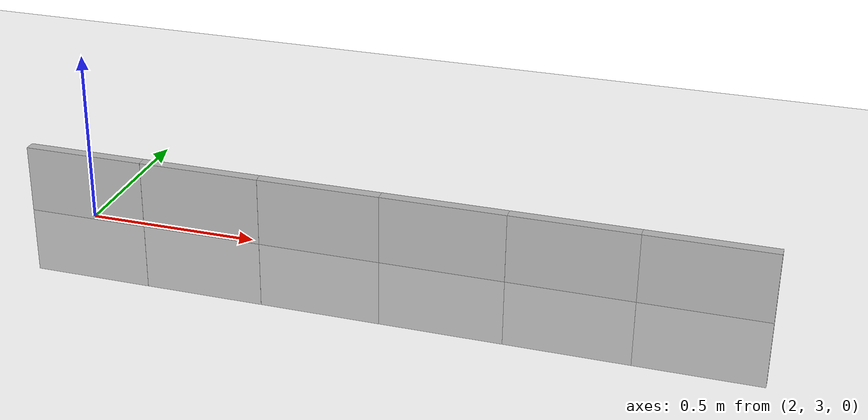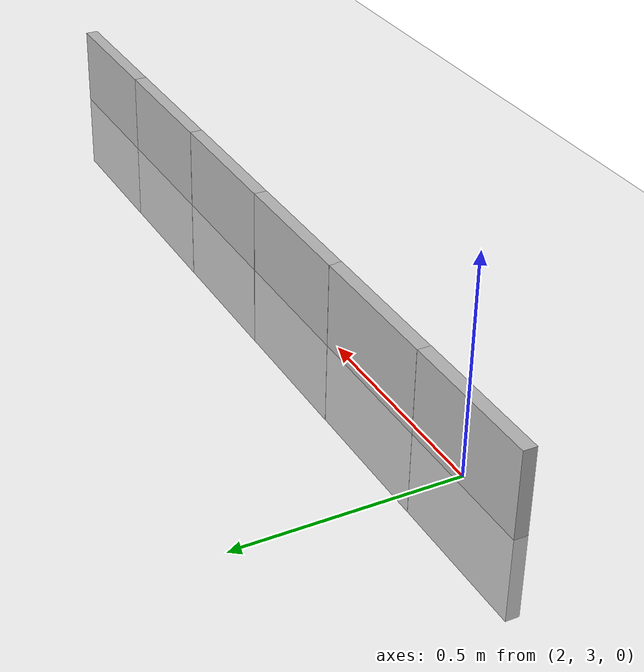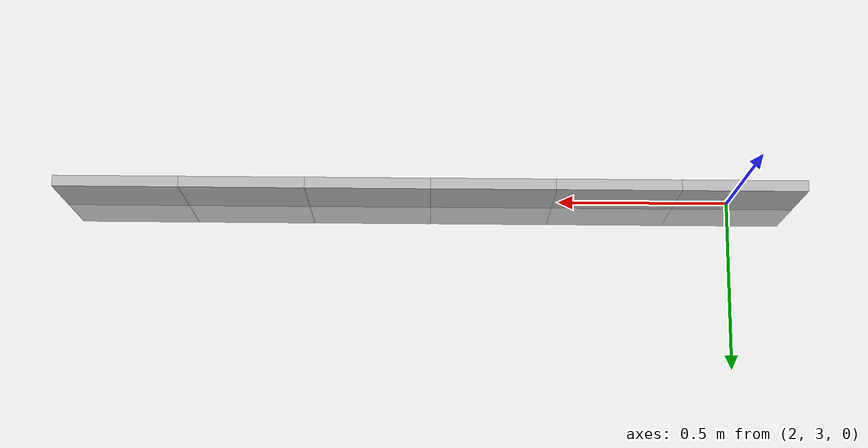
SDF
<sdf version="1.6">
 <world name="default">
  <model name="ground_plane">
   <static>1</static>
   <link name="link">
    <collision name="collision">
     <geometry><plane><normal>0 0 1</normal><size>100 100</size></plane></geometry>
     <surface>
      <contact><collide_bitmask>65535</collide_bitmask></contact>
      <friction><ode><mu>100</mu><mu2>50</mu2></ode></friction>
     </surface>
    </collision>
    <visual name="visual">
     <cast_shadows>0</cast_shadows>
     <geometry><plane><normal>0 0 1</normal><size>100 100</size></plane></geometry>
     <material>
      <script><uri>file://media/materials/scripts/gazebo.material</uri><name>Gazebo/Grey</name></script>
     </material>
    </visual>
   </link>
  </model>
  <model name="Placa03">
   <pose>3.78216 3.00001 0 0 -0 1.57</pose>
   <static>1</static>
   <link name="link">
    <collision name="collision"><geometry><box><size>0.031694 0.360886 0.40006</size></box></geometry></collision>
    <visual name="visual"><geometry><box><size>0.031694 0.360886 0.40006</size></box></geometry></visual>
   </link>
  </model>
  <model name="Placa04">
   <pose>3.42212 3.00025 0 0 -0 1.57</pose>
   <static>1</static>
   <link name="link">
    <collision name="collision"><geometry><box><size>0.031694 0.360886 0.40006</size></box></geometry></collision>
    <visual name="visual"><geometry><box><size>0.031694 0.360886 0.40006</size></box></geometry></visual>
   </link>
  </model>
  <model name="Placa05">
   <pose>3.06218 3.00022 0 0 -0 1.57</pose>
   <static>1</static>
   <link name="link">
    <collision name="collision"><geometry><box><size>0.031694 0.360886 0.40006</size></box></geometry></collision>
    <visual name="visual"><geometry><box><size>0.031694 0.360886 0.40006</size></box></geometry></visual>
   </link>
  </model>
  <model name="Placa06">
   <pose>2.70157 3.00019 0 0 -0 1.57</pose>
   <static>1</static>
   <link name="link">
    <collision name="collision"><geometry><box><size>0.031694 0.360886 0.40006</size></box></geometry></collision>
    <visual name="visual"><geometry><box><size>0.031694 0.360886 0.40006</size></box></geometry></visual>
   </link>
  </model>
  <model name="Placa07">
   <pose>2.34314 3.00016 0 0 -0 1.57</pose>
   <static>1</static>
   <link name="link">
    <collision name="collision"><geometry><box><size>0.031694 0.360886 0.40006</size></box></geometry></collision>
    <visual name="visual"><geometry><box><size>0.031694 0.360886 0.40006</size></box></geometry></visual>
   </link>
  </model>
  <model name="Placa08">
   <pose>1.98331 3.00012 0 0 -0 1.57</pose>
   <static>1</static>
   <link name="link">
    <collision name="collision"><geometry><box><size>0.031694 0.360886 0.40006</size></box></geometry></collision>
    <visual name="visual"><geometry><box><size>0.031694 0.360886 0.40006</size></box></geometry></visual>
   </link>
  </model>
 </world>
</sdf>
